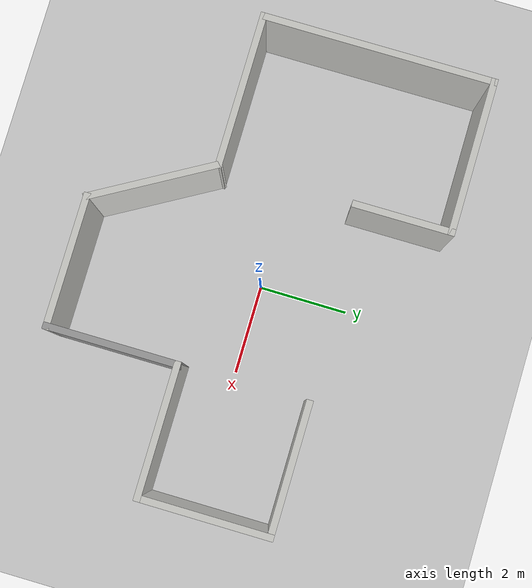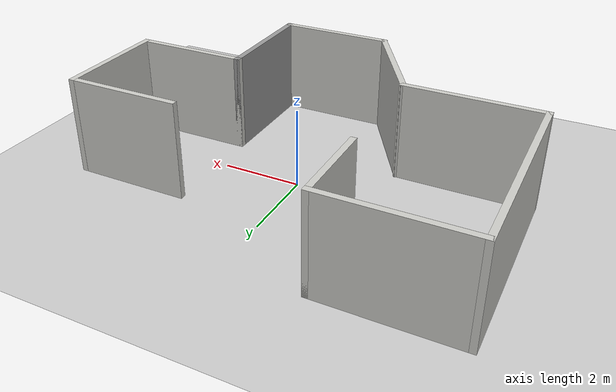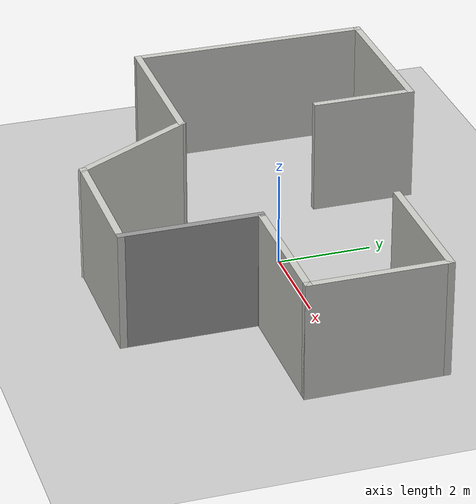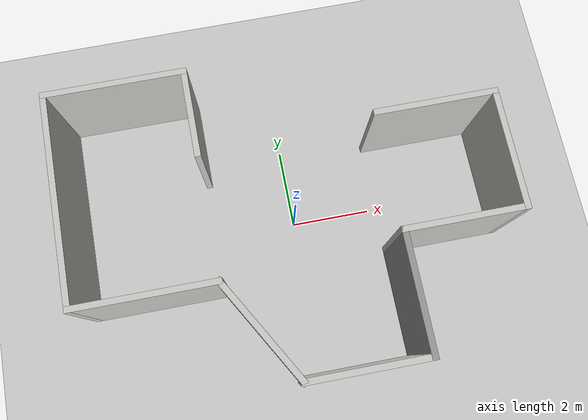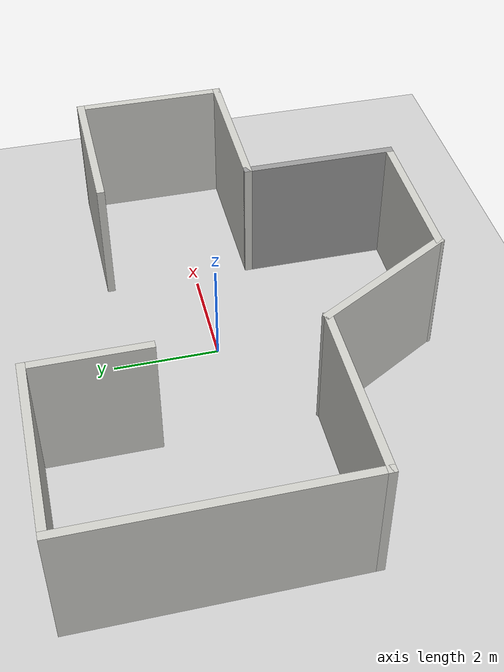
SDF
<sdf version="1.6">
 <world name="default">
  <light name="sun" type="directional">
   <pose>0 0 10 0 -0 0</pose>
   <diffuse>0.8 0.8 0.8 1</diffuse>
   <specular>0.2 0.2 0.2 1</specular>
   <attenuation>
    <range>1000</range>
    <constant>0.9</constant>
    <linear>0.01</linear>
    <quadratic>0.001</quadratic>
   </attenuation>
   <direction>-0.5 0.1 -0.9</direction>
  </light>
  <model name="ground_plane">
   <static>1</static>
   <link name="link">
    <collision name="collision">
     <geometry><plane><normal>0 0 1</normal><size>100 100</size></plane></geometry>
     <surface>
      <contact><collide_bitmask>65535</collide_bitmask></contact>
      <friction><ode><mu>100</mu><mu2>50</mu2></ode></friction>
     </surface>
    </collision>
    <visual name="visual">
     <cast_shadows>0</cast_shadows>
     <geometry><plane><normal>0 0 1</normal><size>100 100</size></plane></geometry>
     <material>
      <script><uri>file://media/materials/scripts/gazebo.material</uri><name>Gazebo/Grey</name></script>
     </material>
    </visual>
   </link>
  </model>
  <gravity>0 0 -9.8</gravity>
  <magnetic_field>6e-06 2.3e-05 -4.2e-05</magnetic_field>
  <atmosphere type="adiabatic"/>
  <physics name="default_physics" default="0" type="ode">
   <max_step_size>0.001</max_step_size>
   <real_time_factor>1</real_time_factor>
   <real_time_update_rate>1000</real_time_update_rate>
  </physics>
  <scene><ambient>0.4 0.4 0.4 1</ambient><background>0.7 0.7 0.7 1</background><shadows>1</shadows></scene>
  <spherical_coordinates>
   <surface_model>EARTH_WGS84</surface_model>
   <latitude_deg>0</latitude_deg>
   <longitude_deg>0</longitude_deg>
   <elevation>0</elevation>
   <heading_deg>0</heading_deg>
  </spherical_coordinates>
  <model name="room_test01">
   <pose>-0.133356 -0.199576 0 0 -0 0</pose>
   <link name="Wall_0">
    <collision name="Wall_0_Collision">
     <geometry><box><size>3 0.15 2.5</size></box></geometry>
     <pose>0 0 1.25 0 -0 0</pose>
    </collision>
    <visual name="Wall_0_Visual">
     <pose>0 0 1.25 0 -0 0</pose>
     <geometry><box><size>3 0.15 2.5</size></box></geometry>
     <material>
      <script><uri>file://media/materials/scripts/gazebo.material</uri><name>Gazebo/CeilingTiled</name></script>
      <ambient>1 1 1 1</ambient>
     </material>
     <meta><layer>0</layer></meta>
    </visual>
    <pose>3.8125 -0.92036 0 0 -0 0</pose>
   </link>
   <link name="Wall_1">
    <collision name="Wall_1_Collision">
     <geometry><box><size>3 0.15 2.5</size></box></geometry>
     <pose>0 0 1.25 0 -0 0</pose>
    </collision>
    <visual name="Wall_1_Visual">
     <pose>0 0 1.25 0 -0 0</pose>
     <geometry><box><size>3 0.15 2.5</size></box></geometry>
     <material>
      <script><uri>file://media/materials/scripts/gazebo.material</uri><name>Gazebo/CeilingTiled</name></script>
      <ambient>1 1 1 1</ambient>
     </material>
     <meta><layer>0</layer></meta>
    </visual>
    <pose>5.2375 0.50464 0 0 -0 1.5708</pose>
   </link>
   <link name="Wall_10">
    <collision name="Wall_10_Collision">
     <geometry><box><size>3.5 0.15 2.5</size></box></geometry>
     <pose>0 0 1.25 0 -0 0</pose>
    </collision>
    <visual name="Wall_10_Visual">
     <pose>0 0 1.25 0 -0 0</pose>
     <geometry><box><size>3.5 0.15 2.5</size></box></geometry>
     <material>
      <script><uri>file://media/materials/scripts/gazebo.material</uri><name>Gazebo/CeilingTiled</name></script>
      <ambient>1 1 1 1</ambient>
     </material>
     <meta><layer>0</layer></meta>
    </visual>
    <pose>-3.5625 -1.30219 0 0 -0 3.14159</pose>
   </link>
   <link name="Wall_11">
    <collision name="Wall_11_Collision">
     <geometry><box><size>5.25 0.15 2.5</size></box></geometry>
     <pose>0 0 1.25 0 -0 0</pose>
    </collision>
    <visual name="Wall_11_Visual">
     <pose>0 0 1.25 0 -0 0</pose>
     <geometry><box><size>5.25 0.15 2.5</size></box></geometry>
     <material>
      <script><uri>file://media/materials/scripts/gazebo.material</uri><name>Gazebo/CeilingTiled</name></script>
      <ambient>1 1 1 1</ambient>
     </material>
     <meta><layer>0</layer></meta>
    </visual>
    <pose>-5.2375 1.24781 0 0 -0 1.5708</pose>
   </link>
   <link name="Wall_14">
    <collision name="Wall_14_Collision">
     <geometry><box><size>3.5 0.15 2.5</size></box></geometry>
     <pose>0 0 1.25 0 -0 0</pose>
    </collision>
    <visual name="Wall_14_Visual">
     <pose>0 0 1.25 0 -0 0</pose>
     <geometry><box><size>3.5 0.15 2.5</size></box></geometry>
     <material>
      <script><uri>file://media/materials/scripts/gazebo.material</uri><name>Gazebo/CeilingTiled</name></script>
      <ambient>1 1 1 1</ambient>
     </material>
     <meta><layer>0</layer></meta>
    </visual>
    <pose>-3.5625 3.79781 0 0 -0 0</pose>
   </link>
   <link name="Wall_15">
    <collision name="Wall_15_Collision">
     <geometry><box><size>2.25 0.15 2.5</size></box></geometry>
     <pose>0 0 1.25 0 -0 0</pose>
    </collision>
    <visual name="Wall_15_Visual">
     <pose>0 0 1.25 0 -0 0</pose>
     <geometry><box><size>2.25 0.15 2.5</size></box></geometry>
     <material>
      <script><uri>file://media/materials/scripts/gazebo.material</uri><name>Gazebo/CeilingTiled</name></script>
      <ambient>1 1 1 1</ambient>
     </material>
     <meta><layer>0</layer></meta>
    </visual>
    <pose>-1.8875 2.74781 0 0 0 -1.5708</pose>
   </link>
   <link name="Wall_2">
    <collision name="Wall_2_Collision">
     <geometry><box><size>3 0.15 2.5</size></box></geometry>
     <pose>0 0 1.25 0 -0 0</pose>
    </collision>
    <visual name="Wall_2_Visual">
     <pose>0 0 1.25 0 -0 0</pose>
     <geometry><box><size>3 0.15 2.5</size></box></geometry>
     <material>
      <script><uri>file://media/materials/scripts/gazebo.material</uri><name>Gazebo/CeilingTiled</name></script>
      <ambient>1 1 1 1</ambient>
     </material>
     <meta><layer>0</layer></meta>
    </visual>
    <pose>3.8125 1.92964 0 0 -0 3.14159</pose>
   </link>
   <link name="Wall_4">
    <collision name="Wall_4_Collision">
     <geometry><box><size>0.16 0.15 2.5</size></box></geometry>
     <pose>0 0 1.25 0 -0 0</pose>
    </collision>
    <visual name="Wall_4_Visual">
     <pose>0 0 1.25 0 -0 0</pose>
     <geometry><box><size>0.16 0.15 2.5</size></box></geometry>
     <material>
      <script><uri>file://media/materials/scripts/gazebo.material</uri><name>Gazebo/Grey</name></script>
      <ambient>1 1 1 1</ambient>
     </material>
     <meta><layer>0</layer></meta>
    </visual>
    <pose>2.3925 -0.92036 0 0 -0 0</pose>
   </link>
   <link name="Wall_7">
    <collision name="Wall_7_Collision">
     <geometry><box><size>3 0.15 2.5</size></box></geometry>
     <pose>0 0 1.25 0 -0 0</pose>
    </collision>
    <visual name="Wall_7_Visual">
     <pose>0 0 1.25 0 -0 0</pose>
     <geometry><box><size>3 0.15 2.5</size></box></geometry>
     <material>
      <script><uri>file://media/materials/scripts/gazebo.material</uri><name>Gazebo/Grey</name></script>
      <ambient>1 1 1 1</ambient>
     </material>
     <meta><layer>0</layer></meta>
    </visual>
    <pose>2.3875 -2.34536 0 0 0 -1.5708</pose>
   </link>
   <link name="Wall_8">
    <collision name="Wall_8_Collision">
     <geometry><box><size>3 0.15 2.5</size></box></geometry>
     <pose>0 0 1.25 0 -0 0</pose>
    </collision>
    <visual name="Wall_8_Visual">
     <pose>0 0 1.25 0 -0 0</pose>
     <geometry><box><size>3 0.15 2.5</size></box></geometry>
     <material>
      <script><uri>file://media/materials/scripts/gazebo.material</uri><name>Gazebo/CeilingTiled</name></script>
      <ambient>1 1 1 1</ambient>
     </material>
     <meta><layer>0</layer></meta>
    </visual>
    <pose>0.9625 -3.77036 0 0 -0 3.14159</pose>
   </link>
   <link name="Wall_9">
    <collision name="Wall_9_Collision">
     <geometry><box><size>3 0.15 2.5</size></box></geometry>
     <pose>0 0 1.25 0 -0 0</pose>
    </collision>
    <visual name="Wall_9_Visual">
     <pose>0 0 1.25 0 -0 0</pose>
     <geometry><box><size>3 0.15 2.5</size></box></geometry>
     <material>
      <script><uri>file://media/materials/scripts/gazebo.material</uri><name>Gazebo/CeilingTiled</name></script>
      <ambient>1 1 1 1</ambient>
     </material>
     <meta><layer>0</layer></meta>
    </visual>
    <pose>-1.175 -2.53627 0 0 -0 2.0944</pose>
   </link>
   <static>1</static>
  </model>
 </world>
</sdf>
